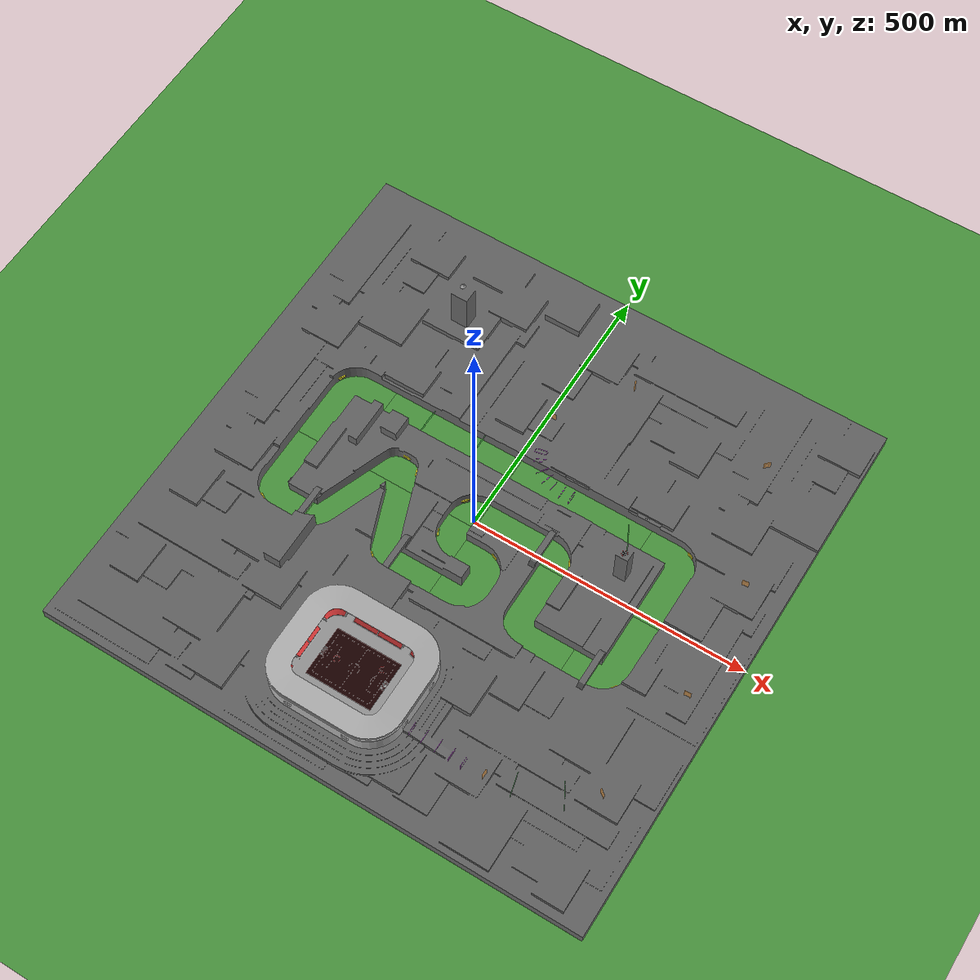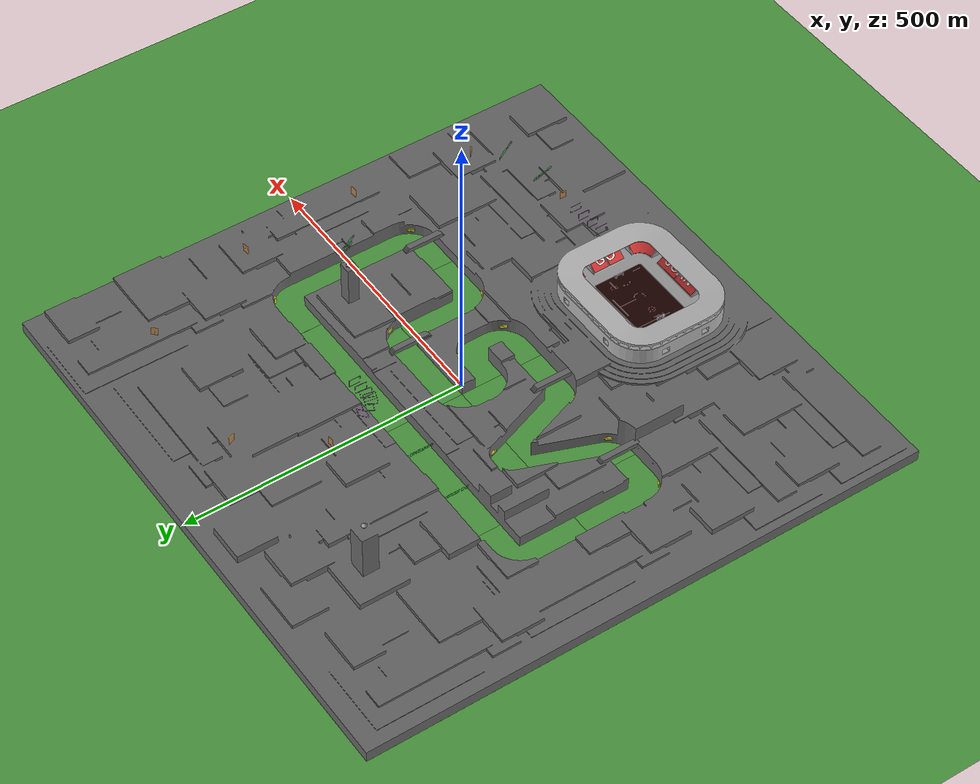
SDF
<?xml version="1.0" ?>
<sdf version="1.4">
  <world name="fw_challenge">
    <!-- Place user camera -->
    <gui>
      <camera name="user_camera">
        <pose>-11.660200 -5.942800 6.053900 0.000000 0.443643 0.352194</pose>
      </camera>
    </gui>
    <scene>
      <ambient>0.7 0.7 0.7 1.0</ambient>
      <grid>false</grid>
      <sky>
        <time>09</time>
        <clouds>
          <speed>2</speed>
        </clouds>
      </sky>
      <origin_visual>0</origin_visual>
    </scene>

    <!-- Only one ROS interface plugin is required per world, as any other plugin can connect a Gazebo
         topic to a ROS topic (or vise versa). -->
    <plugin name="ros_interface_plugin" filename="librotors_gazebo_ros_interface_plugin.so"/>

    <spherical_coordinates>
      <surface_model>EARTH_WGS84</surface_model>
      <latitude_deg>47.3667</latitude_deg>
      <longitude_deg>8.5500</longitude_deg>
      <elevation>500.0</elevation>
      <heading_deg>180</heading_deg>
    </spherical_coordinates>

    <physics type='ode'>
      <ode>
        <solver>
          <type>quick</type>
          <iters>75</iters>
          <sor>1.3</sor>
        </solver>
        <constraints>
          <cfm>0</cfm>
          <erp>0.2</erp>
          <contact_max_correcting_vel>100</contact_max_correcting_vel>
          <contact_surface_layer>0.001</contact_surface_layer>
        </constraints>
      </ode>
      <max_step_size>0.004</max_step_size>
      <real_time_factor>1</real_time_factor>
      <real_time_update_rate>250</real_time_update_rate>
      <gravity>0 0 -9.8</gravity>
    </physics>

    <!-- Light Source -->
    <light type="directional" name="sun">
      <cast_shadows>true</cast_shadows>
      <pose>0 0 300 0 0 0</pose>
      <diffuse>0.7 0.6 0.6 1</diffuse>
      <specular>0.0 0.0 0.0 1</specular>
      <attenuation>
        <range>1000</range>
        <constant>0.9</constant>
        <linear>0.01</linear>
        <quadratic>0.001</quadratic>
      </attenuation>
      <direction>-0.3 0.3 -0.9</direction>
    </light>

    <!-- Ground -->
    <model name="ground_collision_plane">
      <static>true</static>
        <link name='link'>
          <pose>0 0 -20 0 0 0</pose>
          <collision name='collision'>
            <geometry>
              <plane>
                <normal>0 0 1</normal>
                <size>1000 1000</size>
              </plane>
            </geometry>
            <surface>
              <friction>
                <ode>
                  <mu>0.2</mu>
                  <mu2>.2</mu2>
                </ode>
              </friction>
              <contact>
                <ode>
                  <kp>1000000</kp>
                  <kd>1</kd>
                </ode>
              </contact>
            </surface>
          </collision>
	     </link>
    </model>

    <model name="grass_takeoff_plane">
      <static>true</static>
        <link name='link'>
          <pose>0 0 -20 0 0 0</pose>
          <visual name='visual_1'>
            <pose>125 125 0 0 0 0</pose>
            <cast_shadows>true</cast_shadows>
            <geometry>
              <plane>
                <normal>0 0 1</normal>
                <size>250 250</size>
              </plane>
            </geometry>
            <material>
              <script>
                <uri>model://grass_plane/materials/scripts</uri>
                <uri>model://grass_plane/materials/textures</uri>
                <name>vrc/grass</name>
              </script>
            </material>
          </visual>
          <visual name='visual_2'>
            <pose>-125 125 0 0 0 0</pose>
            <cast_shadows>true</cast_shadows>
            <geometry>
              <plane>
                <normal>0 0 1</normal>
                <size>250 250</size>
              </plane>
            </geometry>
            <material>
              <script>
                <uri>model://grass_plane/materials/scripts</uri>
                <uri>model://grass_plane/materials/textures</uri>
                <name>vrc/grass</name>
              </script>
            </material>
          </visual>
          <visual name='visual_3'>
            <pose>-125 -125 0 0 0 0</pose>
            <cast_shadows>true</cast_shadows>
            <geometry>
              <plane>
                <normal>0 0 1</normal>
                <size>250 250</size>
              </plane>
            </geometry>
            <material>
              <script>
                <uri>model://grass_plane/materials/scripts</uri>
                <uri>model://grass_plane/materials/textures</uri>
                <name>vrc/grass</name>
              </script>
            </material>
          </visual>
          <visual name='visual_4'>
            <pose>125 -125 0 0 0 0</pose>
            <cast_shadows>true</cast_shadows>
            <geometry>
              <plane>
                <normal>0 0 1</normal>
                <size>250 250</size>
              </plane>
            </geometry>
            <material>
              <script>
                <uri>model://grass_plane/materials/scripts</uri>
                <uri>model://grass_plane/materials/textures</uri>
                <name>vrc/grass</name>
              </script>
            </material>
          </visual>
          <visual name='visual_5'>
            <pose>375 125 0 0 0 0</pose>
            <cast_shadows>true</cast_shadows>
            <geometry>
              <plane>
                <normal>0 0 1</normal>
                <size>250 250</size>
              </plane>
            </geometry>
            <material>
              <script>
                <uri>model://grass_plane/materials/scripts</uri>
                <uri>model://grass_plane/materials/textures</uri>
                <name>vrc/grass</name>
              </script>
            </material>
          </visual>
          <visual name='visual_6'>
            <pose>375 375 0 0 0 0</pose>
            <cast_shadows>true</cast_shadows>
            <geometry>
              <plane>
                <normal>0 0 1</normal>
                <size>250 250</size>
              </plane>
            </geometry>
            <material>
              <script>
                <uri>model://grass_plane/materials/scripts</uri>
                <uri>model://grass_plane/materials/textures</uri>
                <name>vrc/grass</name>
              </script>
            </material>
          </visual>
          <visual name='visual_7'>
            <pose>125 375 0 0 0 0</pose>
            <cast_shadows>true</cast_shadows>
            <geometry>
              <plane>
                <normal>0 0 1</normal>
                <size>250 250</size>
              </plane>
            </geometry>
            <material>
              <script>
                <uri>model://grass_plane/materials/scripts</uri>
                <uri>model://grass_plane/materials/textures</uri>
                <name>vrc/grass</name>
              </script>
            </material>
          </visual>
          <visual name='visual_8'>
            <pose>-125 375 0 0 0 0</pose>
            <cast_shadows>true</cast_shadows>
            <geometry>
              <plane>
                <normal>0 0 1</normal>
                <size>250 250</size>
              </plane>
            </geometry>
            <material>
              <script>
                <uri>model://grass_plane/materials/scripts</uri>
                <uri>model://grass_plane/materials/textures</uri>
                <name>vrc/grass</name>
              </script>
            </material>
          </visual>
          <visual name='visual_9'>
            <pose>-375 375 0 0 0 0</pose>
            <cast_shadows>true</cast_shadows>
            <geometry>
              <plane>
                <normal>0 0 1</normal>
                <size>250 250</size>
              </plane>
            </geometry>
            <material>
              <script>
                <uri>model://grass_plane/materials/scripts</uri>
                <uri>model://grass_plane/materials/textures</uri>
                <name>vrc/grass</name>
              </script>
            </material>
          </visual>
          <visual name='visual_10'>
            <pose>-375 125 0 0 0 0</pose>
            <cast_shadows>true</cast_shadows>
            <geometry>
              <plane>
                <normal>0 0 1</normal>
                <size>250 250</size>
              </plane>
            </geometry>
            <material>
              <script>
                <uri>model://grass_plane/materials/scripts</uri>
                <uri>model://grass_plane/materials/textures</uri>
                <name>vrc/grass</name>
              </script>
            </material>
          </visual>
          <visual name='visual_11'>
            <pose>-375 -125 0 0 0 0</pose>
            <cast_shadows>true</cast_shadows>
            <geometry>
              <plane>
                <normal>0 0 1</normal>
                <size>250 250</size>
              </plane>
            </geometry>
            <material>
              <script>
                <uri>model://grass_plane/materials/scripts</uri>
                <uri>model://grass_plane/materials/textures</uri>
                <name>vrc/grass</name>
              </script>
            </material>
          </visual>
          <visual name='visual_12'>
            <pose>-375 -375 0 0 0 0</pose>
            <cast_shadows>true</cast_shadows>
            <geometry>
              <plane>
                <normal>0 0 1</normal>
                <size>250 250</size>
              </plane>
            </geometry>
            <material>
              <script>
                <uri>model://grass_plane/materials/scripts</uri>
                <uri>model://grass_plane/materials/textures</uri>
                <name>vrc/grass</name>
              </script>
            </material>
          </visual>
          <visual name='visual_13'>
            <pose>-125 -375 0 0 0 0</pose>
            <cast_shadows>true</cast_shadows>
            <geometry>
              <plane>
                <normal>0 0 1</normal>
                <size>250 250</size>
              </plane>
            </geometry>
            <material>
              <script>
                <uri>model://grass_plane/materials/scripts</uri>
                <uri>model://grass_plane/materials/textures</uri>
                <name>vrc/grass</name>
              </script>
            </material>
          </visual>
          <visual name='visual_14'>
            <pose>125 -375 0 0 0 0</pose>
            <cast_shadows>true</cast_shadows>
            <geometry>
              <plane>
                <normal>0 0 1</normal>
                <size>250 250</size>
              </plane>
            </geometry>
            <material>
              <script>
                <uri>model://grass_plane/materials/scripts</uri>
                <uri>model://grass_plane/materials/textures</uri>
                <name>vrc/grass</name>
              </script>
            </material>
          </visual>
          <visual name='visual_15'>
            <pose>375 -375 0 0 0 0</pose>
            <cast_shadows>true</cast_shadows>
            <geometry>
              <plane>
                <normal>0 0 1</normal>
                <size>250 250</size>
              </plane>
            </geometry>
            <material>
              <script>
                <uri>model://grass_plane/materials/scripts</uri>
                <uri>model://grass_plane/materials/textures</uri>
                <name>vrc/grass</name>
              </script>
            </material>
          </visual>
          <visual name='visual_16'>
            <pose>375 -125 0 0 0 0</pose>
            <cast_shadows>true</cast_shadows>
            <geometry>
              <plane>
                <normal>0 0 1</normal>
                <size>250 250</size>
              </plane>
            </geometry>
            <material>
              <script>
                <uri>model://grass_plane/materials/scripts</uri>
                <uri>model://grass_plane/materials/textures</uri>
                <name>vrc/grass</name>
              </script>
            </material>
          </visual>
        </link>
    </model>

    <model name="fw_challenge_base">
      <static>true</static>
        <link name='link'>
          <visual name="visual">
            <pose>0 0 0 0 0 0</pose>
            <cast_shadows>true</cast_shadows>
            <geometry>
              <mesh>
                <uri>model://fw_challenge/meshes/fw_challenge_base.stl</uri>
                <scale>1 1 1</scale>
              </mesh>
            </geometry>
            <material>
              <ambient>0.4 0.4 0.4 1</ambient>
              <diffuse>0.4 0.4 0.4 1</diffuse>
              <specular>0 0 0 0</specular>
            </material>
          </visual>
          <collision name='collision'>
            <geometry>
              <mesh>
                <uri>model://fw_challenge/meshes/fw_challenge_tower_collision.stl</uri>
                <scale>1 1 1</scale>
              </mesh>
            </geometry>
            <surface>
              <friction>
                <ode>
                  <mu>0.2</mu>
                  <mu2>.2</mu2>
                </ode>
              </friction>
              <contact>
                <ode>
                  <kp>1000000</kp>
                  <kd>1</kd>
                </ode>
              </contact>
            </surface>
          </collision>
        </link>
    </model>

    <model name="fw_challenge_bridges">
      <static>true</static>
        <link name='link'>
          <visual name="visual">
            <pose>0 0 0 0 0 0</pose>
            <cast_shadows>true</cast_shadows>
            <geometry>
              <mesh>
                <uri>model://fw_challenge/meshes/fw_challenge_bridges.stl</uri>
                <scale>1 1 1</scale>
              </mesh>
            </geometry>
            <material>
              <ambient>0.4 0.4 0.4 1</ambient>
              <diffuse>0.4 0.4 0.4 1</diffuse>
              <specular>0 0 0 0</specular>
            </material>
          </visual>
        </link>
    </model>

    <model name="fw_challenge_stadium_base">
      <static>true</static>
        <link name='link'>
          <visual name="visual">
            <pose>0 0 0 0 0 0</pose>
            <cast_shadows>true</cast_shadows>
            <geometry>
              <mesh>
                <uri>model://fw_challenge/meshes/fw_challenge_stadium_base.stl</uri>
                <scale>1 1 1</scale>
              </mesh>
            </geometry>
            <material>
              <script>
                <uri>file://media/materials/scripts/gazebo.material</uri>
                <name>Gazebo/Grey</name>
              </script>
            </material>
          </visual>
        </link>
    </model>

    <model name="fw_challenge_stadium_hull">
      <static>true</static>
        <link name='link'>
          <visual name="visual">
            <pose>0 0 0 0 0 0</pose>
            <cast_shadows>true</cast_shadows>
            <geometry>
              <mesh>
                <uri>model://fw_challenge/meshes/fw_challenge_stadium_hull.stl</uri>
                <scale>1 1 1</scale>
              </mesh>
            </geometry>
            <material>
              <ambient>0.7 0.7 0.7 1</ambient>
              <diffuse>0.7 0.7 0.7 1</diffuse>
              <specular>0 0 0 0</specular>
            </material>
          </visual>
        </link>
    </model>

    <model name="fw_challenge_stadium_field">
      <static>true</static>
        <link name='link'>
          <visual name="visual">
            <pose>0 0 0 0 0 0</pose>
            <cast_shadows>true</cast_shadows>
            <geometry>
              <mesh>
                <uri>model://fw_challenge/meshes/fw_challenge_stadium_field.stl</uri>
                <scale>1 1 1</scale>
              </mesh>
            </geometry>
            <material>
              <ambient>0.3 0.6 0 1</ambient>
              <diffuse>0.1 0.0 0 1</diffuse>
              <specular>0 0 0 0</specular>
            </material>
          </visual>
          <collision name='collision'>
            <geometry>
              <mesh>
                <uri>model://fw_challenge/meshes/fw_challenge_stadium_field_collision.stl</uri>
                <scale>1 1 1</scale>
              </mesh>
            </geometry>
            <surface>
              <friction>
                <ode>
                  <mu>0.2</mu>
                  <mu2>.2</mu2>
                </ode>
              </friction>
              <contact>
                <ode>
                  <kp>1000000</kp>
                  <kd>1</kd>
                </ode>
              </contact>
            </surface>
          </collision>
        </link>
    </model>

    <model name="fw_challenge_stadium_field_lines">
      <static>true</static>
        <link name='link'>
          <visual name="visual">
            <pose>0 0 0 0 0 0</pose>
            <cast_shadows>true</cast_shadows>
            <geometry>
              <mesh>
                <uri>model://fw_challenge/meshes/fw_challenge_stadium_field_lines.stl</uri>
                <scale>1 1 1</scale>
              </mesh>
            </geometry>
            <script>
              <uri>file://media/materials/scripts/gazebo.material</uri>
              <name>Gazebo/White</name>
            </script>
          </visual>
        </link>
    </model>

    <model name="fw_challenge_stadium_field_goal">
      <static>true</static>
        <link name='link'>
          <visual name="visual">
            <pose>0 0 0 0 0 0</pose>
            <cast_shadows>true</cast_shadows>
            <geometry>
              <mesh>
                <uri>model://fw_challenge/meshes/fw_challenge_stadium_goal.stl</uri>
                <scale>1 1 1</scale>
              </mesh>
            </geometry>
            <script>
              <uri>file://media/materials/scripts/gazebo.material</uri>
              <name>Gazebo/White</name>
            </script>
          </visual>
          <collision name='collision'>
            <geometry>
              <mesh>
                <uri>model://fw_challenge/meshes/fw_challenge_stadium_goal_collision.stl</uri>
                <scale>1 1 1</scale>
              </mesh>
            </geometry>
            <surface>
              <friction>
                <ode>
                  <mu>0.2</mu>
                  <mu2>.2</mu2>
                </ode>
              </friction>
              <contact>
                <ode>
                  <kp>1000000</kp>
                  <kd>1</kd>
                </ode>
              </contact>
            </surface>
          </collision>
        </link>
    </model>

    <model name="fw_challenge_stadium_seats">
      <static>true</static>
        <link name='link'>
          <visual name="visual">
            <pose>0 0 0 0 0 0</pose>
            <cast_shadows>true</cast_shadows>
            <geometry>
              <mesh>
                <uri>model://fw_challenge/meshes/fw_challenge_stadium_seats.stl</uri>
                <scale>1 1 1</scale>
              </mesh>
            </geometry>
            <material>
              <ambient>0.8 0.2 0.2 1</ambient>
              <diffuse>0.8 0.2 0.2 1</diffuse>
              <specular>0 0 0 0</specular>
            </material>
          </visual>
        </link>
    </model>

    <model name="fw_challenge_stadium_go_juan">
      <static>true</static>
        <link name='link'>
          <visual name="visual">
            <pose>0 0 0 0 0 0</pose>
            <cast_shadows>true</cast_shadows>
            <geometry>
              <mesh>
                <uri>model://fw_challenge/meshes/fw_challenge_stadium_go_juan.stl</uri>
                <scale>1 1 1</scale>
              </mesh>
            </geometry>
            <material>
              <script>
                <uri>file://media/materials/scripts/gazebo.material</uri>
                <name>Gazebo/White</name>
              </script>
            </material>
          </visual>
        </link>
    </model>

    <model name="fw_challenge_pickup_circles">
      <static>true</static>
        <link name='link'>
          <visual name="visual">
            <pose>0 0 0 0 0 0</pose>
            <cast_shadows>true</cast_shadows>
            <geometry>
              <mesh>
                <uri>model://fw_challenge/meshes/fw_challenge_pickup_circles.stl</uri>
                <scale>1 1 1</scale>
              </mesh>
            </geometry>
            <material>
              <script>
                <uri>file://media/materials/scripts/gazebo.material</uri>
                <name>Gazebo/Red</name>
              </script>
            </material>
          </visual>
        </link>
    </model>

    <model name="fw_challenge_guides">
      <static>true</static>
        <link name='link'>
          <visual name="visual">
            <pose>0 0 0 0 0 0</pose>
            <cast_shadows>true</cast_shadows>
            <geometry>
              <mesh>
                <uri>model://fw_challenge/meshes/fw_challenge_guides.stl</uri>
                <scale>1 1 1</scale>
              </mesh>
            </geometry>
            <material>
              <script>
                <uri>file://media/materials/scripts/gazebo.material</uri>
                <name>Gazebo/Purple</name>
              </script>
            </material>
          </visual>
        </link>
    </model>

    <model name="fw_challenge_grill">
      <static>true</static>
        <link name='link'>
          <visual name="visual">
            <pose>0 0 0 0 0 0</pose>
            <cast_shadows>true</cast_shadows>
            <geometry>
              <mesh>
                <uri>model://fw_challenge/meshes/fw_challenge_grill.stl</uri>
                <scale>1 1 1</scale>
              </mesh>
            </geometry>
            <material>
              <script>
                <uri>file://media/materials/scripts/gazebo.material</uri>
                <name>Gazebo/Grey</name>
              </script>
            </material>
          </visual>
          <collision name='collision'>
            <geometry>
              <mesh>
                <uri>model://fw_challenge/meshes/fw_challenge_grill_collision.stl</uri>
                <scale>1 1 1</scale>
              </mesh>
            </geometry>
            <surface>
              <friction>
                <ode>
                  <mu>0.2</mu>
                  <mu2>.2</mu2>
                </ode>
              </friction>
              <contact>
                <ode>
                  <kp>1000000</kp>
                  <kd>1</kd>
                </ode>
              </contact>
            </surface>
          </collision>
        </link>
    </model>

    <model name="fw_challenge_labels">
      <static>true</static>
        <link name='link'>
          <visual name="visual">
            <pose>0 0 0 0 0 0</pose>
            <geometry>
              <mesh>
                <uri>model://fw_challenge/meshes/fw_challenge_labels.stl</uri>
                <scale>1 1 1</scale>
              </mesh>
            </geometry>
            <material>
              <script>
                <uri>file://media/materials/scripts/gazebo.material</uri>
                <name>Gazebo/GreenTransparent</name>
              </script>
            </material>
          </visual>
        </link>
    </model>

    <model name="fw_challenge_arrows">
      <static>true</static>
        <link name='link'>
          <visual name="visual">
            <pose>0 0 0 0 0 0</pose>
            <geometry>
              <mesh>
                <uri>model://fw_challenge/meshes/fw_challenge_arrows.stl</uri>
                <scale>1 1 1</scale>
              </mesh>
            </geometry>
            <material>
              <script>
                <uri>file://media/materials/scripts/gazebo.material</uri>
                <name>Gazebo/Yellow</name>
              </script>
            </material>
          </visual>
        </link>
    </model>

    <model name="fw_challenge_gates">
      <static>true</static>
        <link name='link'>
          <visual name="visual">
            <pose>0 0 0 0 0 0</pose>
            <geometry>
              <mesh>
                <uri>model://fw_challenge/meshes/fw_challenge_gates.stl</uri>
                <scale>1 1 1</scale>
              </mesh>
            </geometry>
            <material>
              <script>
                <uri>file://media/materials/scripts/gazebo.material</uri>
                <name>Gazebo/OrangeTransparent</name>
              </script>
            </material>
          </visual>
        </link>
    </model>

    <model name="bulls_eye_1">
      <static>true</static>
        <link name='link'>
          <pose>251.65 43.54 78.8 0 0 0</pose>
          <visual name='bulls_eye_r1'>
            <pose>0 0 0 0 0 0</pose>
            <cast_shadows>false</cast_shadows>
            <geometry>
              <cylinder>
                <radius>0.5</radius>
                <length>0.12</length>
              </cylinder>
            </geometry>
            <material>
              <script>
                <uri>file://media/materials/scripts/gazebo.material</uri>
                <name>Gazebo/Black</name>
              </script>
            </material>
          </visual>
          <visual name='bulls_eye_r2'>
            <pose>0 0 0 0 0 0</pose>
            <cast_shadows>false</cast_shadows>
            <geometry>
              <cylinder>
                <radius>1</radius>
                <length>0.11</length>
              </cylinder>
            </geometry>
            <material>
              <script>
                <uri>file://media/materials/scripts/gazebo.material</uri>
                <name>Gazebo/White</name>
              </script>
            </material>
          </visual>
          <visual name='bulls_eye_r3'>
            <pose>0 0 0 0 0 0</pose>
            <cast_shadows>false</cast_shadows>
            <geometry>
              <cylinder>
                <radius>1.5</radius>
                <length>0.1</length>
              </cylinder>
            </geometry>
            <material>
              <script>
                <uri>file://media/materials/scripts/gazebo.material</uri>
                <name>Gazebo/Black</name>
              </script>
            </material>
          </visual>
          <visual name='bulls_eye_r4'>
            <pose>0 0 0 0 0 0</pose>
            <cast_shadows>false</cast_shadows>
            <geometry>
              <cylinder>
                <radius>2</radius>
                <length>0.09</length>
              </cylinder>
            </geometry>
            <material>
              <script>
                <uri>file://media/materials/scripts/gazebo.material</uri>
                <name>Gazebo/White</name>
              </script>
            </material>
          </visual>
          <visual name='bulls_eye_r5'>
            <pose>0 0 0 0 0 0</pose>
            <cast_shadows>false</cast_shadows>
            <geometry>
              <cylinder>
                <radius>2.5</radius>
                <length>0.08</length>
              </cylinder>
            </geometry>
            <material>
              <script>
                <uri>file://media/materials/scripts/gazebo.material</uri>
                <name>Gazebo/Black</name>
              </script>
            </material>
          </visual>
          <visual name='bulls_eye_r6'>
            <pose>0 0 0 0 0 0</pose>
            <cast_shadows>false</cast_shadows>
            <geometry>
              <cylinder>
                <radius>3</radius>
                <length>0.07</length>
              </cylinder>
            </geometry>
            <material>
              <script>
                <uri>file://media/materials/scripts/gazebo.material</uri>
                <name>Gazebo/White</name>
              </script>
            </material>
          </visual>
          <visual name='bulls_eye_r7'>
            <pose>0 0 0 0 0 0</pose>
            <cast_shadows>false</cast_shadows>
            <geometry>
              <cylinder>
                <radius>3.5</radius>
                <length>0.06</length>
              </cylinder>
            </geometry>
            <material>
              <script>
                <uri>file://media/materials/scripts/gazebo.material</uri>
                <name>Gazebo/Black</name>
              </script>
            </material>
          </visual>
        </link>
    </model>

    </world>
</sdf>
